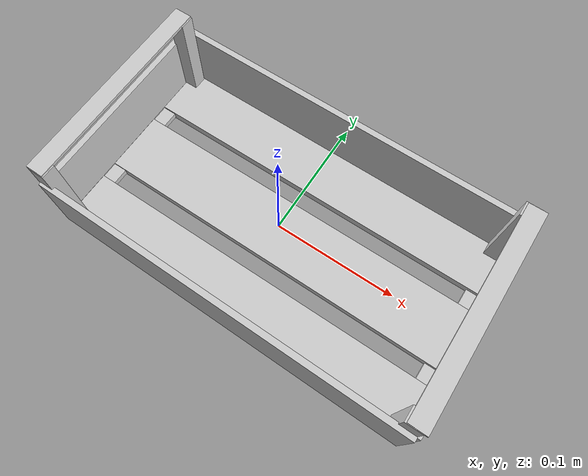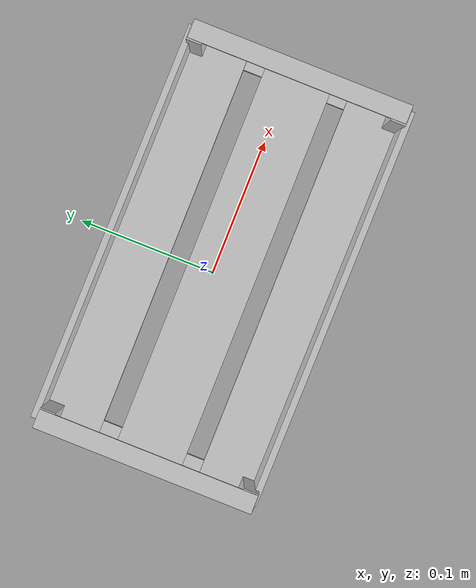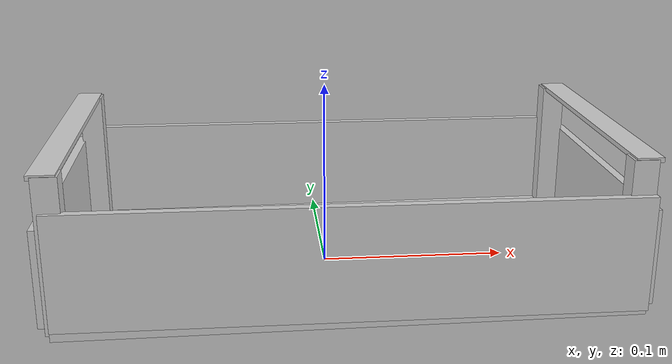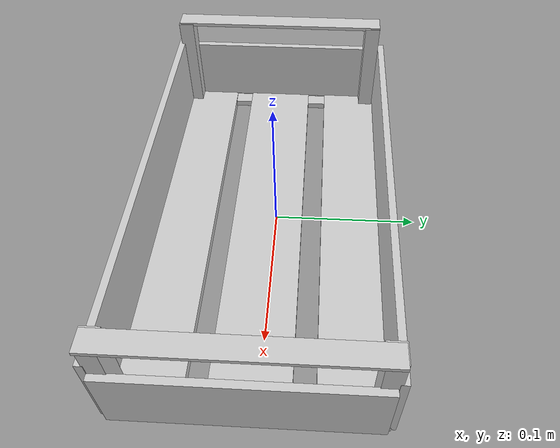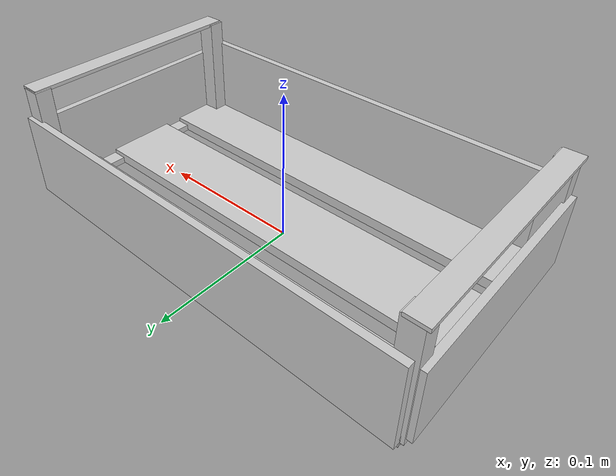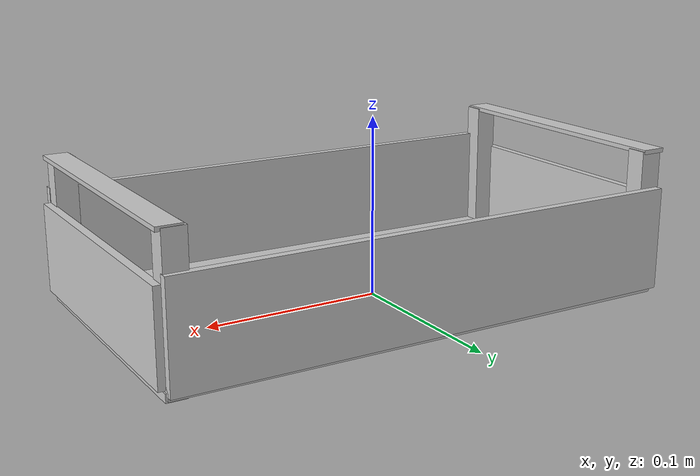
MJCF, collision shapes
<mujoco model="wooden_tray">
  <compiler angle="radian" inertiagrouprange="0 0" autolimits="true" />
  <asset>
    <texture file="../assets/turbosquid_objects/wooden_tray/crate_mat_BaseColor.png" name="tex-wooden_tray" type="2d" />
    <material name="wooden_tray" reflectance="0.5" texrepeat="1 1" texture="tex-wooden_tray" texuniform="false" />
    <mesh file="../assets/turbosquid_objects/wooden_tray/visual/wooden_tray_vis.msh" name="wooden_tray_vis" scale="0.5 0.5 0.5" />
  </asset>
  <worldbody>
    <body name="object">
      <site type="box" pos="0.00863 -0.00471 0.04255" quat="0.70711 0.00000 0.70711 0.00000" size="0.04038 0.07839 0.13549" group="0" rgba="1 0 0 0" name="contain_region" />
      <geom solimp="0.998 0.998 0.001" solref="0.001 1" density="100" friction="0.95 0.3 0.1" type="mesh" mesh="wooden_tray_vis" conaffinity="0" contype="0" group="1" material="wooden_tray" />
      <geom solimp="0.998 0.998 0.001" solref="0.001 1" density="100" friction="0.95 0.3 0.1" type="box" pos="-0.13924 -0.00547 0.02993" quat="0.00000 0.00000 0.70711 0.70711" size="0.00232 0.02460 0.07784" group="0" rgba="0.8 0.8 0.8 0.3" />
      <geom solimp="0.998 0.998 0.001" solref="0.001 1" density="100" friction="0.95 0.3 0.1" type="box" pos="0.15323 -0.00547 0.02993" quat="0.00000 0.00000 0.70711 0.70711" size="0.00232 0.02460 0.07784" group="0" rgba="0.8 0.8 0.8 0.3" />
      <geom solimp="0.998 0.998 0.001" solref="0.001 1" density="100" friction="0.95 0.3 0.1" type="box" pos="0.00781 -0.08453 0.03323" quat="0.49868 0.49868 -0.50132 -0.50132" size="0.00232 0.02943 0.14400" group="0" rgba="0.8 0.8 0.8 0.3" />
      <geom solimp="0.998 0.998 0.001" solref="0.001 1" density="100" friction="0.95 0.3 0.1" type="box" pos="0.00781 0.07580 0.03117" quat="0.50132 0.50132 0.49868 0.49868" size="0.00232 0.02843 0.14400" group="0" rgba="0.8 0.8 0.8 0.3" />
      <geom solimp="0.998 0.998 0.001" solref="0.001 1" density="100" friction="0.95 0.3 0.1" type="box" pos="0.00781 -0.00556 0.00354" quat="0.00090 0.70897 -0.00089 -0.70524" size="0.00363 0.02460 0.14400" group="0" rgba="0.8 0.8 0.8 0.3" />
      <geom solimp="0.998 0.998 0.001" solref="0.001 1" density="100" friction="0.95 0.3 0.1" type="box" pos="0.00781 0.05385 0.00363" quat="0.00090 0.70897 -0.00090 -0.70524" size="0.00363 0.02087 0.14400" group="0" rgba="0.8 0.8 0.8 0.3" />
      <geom solimp="0.998 0.998 0.001" solref="0.001 1" density="100" friction="0.95 0.3 0.1" type="box" pos="0.00781 -0.06421 0.00346" quat="0.00090 0.70897 -0.00090 -0.70524" size="0.00363 0.02087 0.14400" group="0" rgba="0.8 0.8 0.8 0.3" />
      <geom solimp="0.998 0.998 0.001" solref="0.001 1" density="100" friction="0.95 0.3 0.1" type="box" pos="0.14715 -0.00420 0.00223" quat="0.50068 -0.50195 0.49931 0.49805" size="0.00232 0.00542 0.07756" group="0" rgba="0.8 0.8 0.8 0.3" />
      <geom solimp="0.998 0.998 0.001" solref="0.001 1" density="100" friction="0.95 0.3 0.1" type="box" pos="-0.13099 -0.00420 0.00287" quat="0.50195 0.50068 0.49805 -0.49931" size="0.00232 0.00542 0.07756" group="0" rgba="0.8 0.8 0.8 0.3" />
      <geom solimp="0.998 0.998 0.001" solref="0.001 1" density="100" friction="0.95 0.3 0.1" type="box" pos="-0.13206 0.06811 0.04084" quat="0.00000 0.70711 0.70711 0.00000" size="0.00548 0.00620 0.03918" group="0" rgba="0.8 0.8 0.8 0.3" />
      <geom solimp="0.998 0.998 0.001" solref="0.001 1" density="100" friction="0.95 0.3 0.1" type="box" pos="-0.13350 -0.00490 0.07967" quat="0.50000 -0.50000 0.50000 0.50000" size="0.00121 0.00670 0.07862" group="0" rgba="0.8 0.8 0.8 0.3" />
      <geom solimp="0.998 0.998 0.001" solref="0.001 1" density="100" friction="0.95 0.3 0.1" type="box" pos="0.14712 -0.00490 0.07967" quat="0.50000 -0.50000 0.50000 0.50000" size="0.00121 0.00670 0.07862" group="0" rgba="0.8 0.8 0.8 0.3" />
      <geom solimp="0.998 0.998 0.001" solref="0.001 1" density="100" friction="0.95 0.3 0.1" type="box" pos="-0.13206 -0.07846 0.04084" quat="0.00000 -0.70711 0.70711 -0.00000" size="0.00548 0.00620 0.03918" group="0" rgba="0.8 0.8 0.8 0.3" />
      <geom solimp="0.998 0.998 0.001" solref="0.001 1" density="100" friction="0.95 0.3 0.1" type="box" pos="0.14531 -0.07846 0.04084" quat="0.00000 0.70711 0.70711 0.00000" size="0.00548 0.00620 0.03918" group="0" rgba="0.8 0.8 0.8 0.3" />
      <geom solimp="0.998 0.998 0.001" solref="0.001 1" density="100" friction="0.95 0.3 0.1" type="box" pos="0.14531 0.06891 0.04084" quat="0.00000 0.70711 0.70711 0.00000" size="0.00548 0.00620 0.03918" group="0" rgba="0.8 0.8 0.8 0.3" />
    </body>
  </worldbody>
</mujoco>
